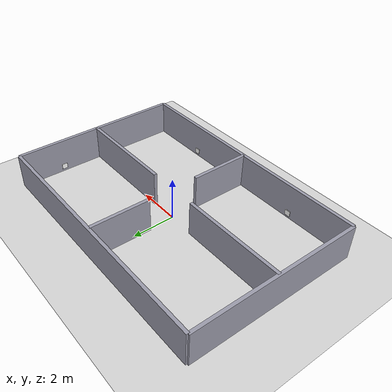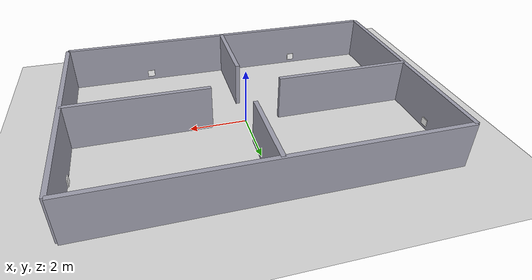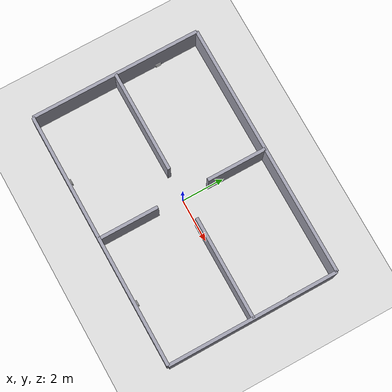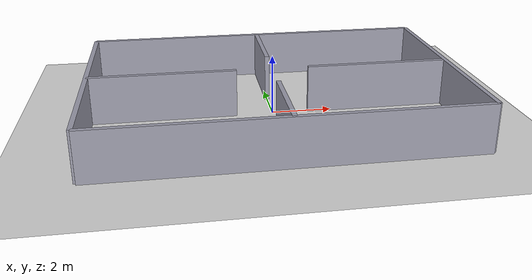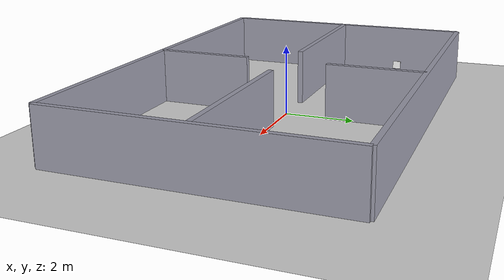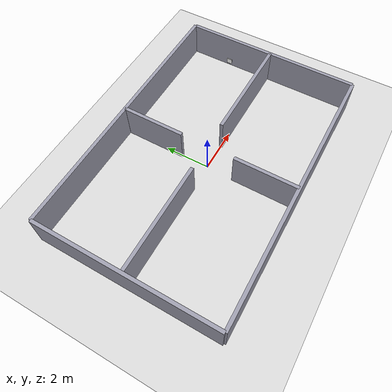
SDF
<?xml version="1.0" ?>
<!-- SMALL sectioned maze for FAST exploration/inspection testing (auto-generated by gen_maze_world.py):
     12x8 m, 4 rooms (NW/NE/SW/SE) around a central HUB. Robot spawns at (0,0) facing +X. -->
<sdf version="1.10">
  <world name="maze">
    <physics name="1ms" type="ignored"><max_step_size>0.002</max_step_size><real_time_factor>1.0</real_time_factor></physics>
    <plugin filename="gz-sim-physics-system"           name="gz::sim::systems::Physics"/>
    <plugin filename="gz-sim-sensors-system"           name="gz::sim::systems::Sensors"><render_engine>ogre2</render_engine></plugin>
    <plugin filename="gz-sim-scene-broadcaster-system" name="gz::sim::systems::SceneBroadcaster"/>
    <plugin filename="gz-sim-user-commands-system"     name="gz::sim::systems::UserCommands"/>
    <plugin filename="gz-sim-contact-system"           name="gz::sim::systems::Contact"/>
    <plugin filename="gz-sim-imu-system"               name="gz::sim::systems::Imu"/>

    <scene><ambient>0.45 0.45 0.45 1</ambient><background>0.7 0.7 0.8 1</background><grid>false</grid></scene>
    <light type="directional" name="sun"><cast_shadows>true</cast_shadows><pose>0 0 12 0 0 0</pose>
      <diffuse>0.9 0.9 0.9 1</diffuse><specular>0.2 0.2 0.2 1</specular><direction>-0.4 0.3 -0.9</direction></light>

    <model name="ground_plane"><static>true</static><link name="link">
      <collision name="c"><geometry><plane><normal>0 0 1</normal><size>60 60</size></plane></geometry></collision>
      <visual name="v"><geometry><plane><normal>0 0 1</normal><size>60 60</size></plane></geometry>
        <material><ambient>0.8 0.8 0.8 1</ambient><diffuse>0.85 0.85 0.85 1</diffuse></material></visual>
    </link></model>

    <model name="maze"><static>true</static><link name="structure">
        <collision name="n_c"><pose>0.0 4.0 0.8 0 0 0</pose><geometry><box><size>12.0 0.15 1.6</size></box></geometry></collision>
        <visual name="n_v"><pose>0.0 4.0 0.8 0 0 0</pose><geometry><box><size>12.0 0.15 1.6</size></box></geometry><material><ambient>0.62 0.62 0.68 1</ambient><diffuse>0.62 0.62 0.68 1</diffuse></material></visual>
        <collision name="s_c"><pose>0.0 -4.0 0.8 0 0 0</pose><geometry><box><size>12.0 0.15 1.6</size></box></geometry></collision>
        <visual name="s_v"><pose>0.0 -4.0 0.8 0 0 0</pose><geometry><box><size>12.0 0.15 1.6</size></box></geometry><material><ambient>0.62 0.62 0.68 1</ambient><diffuse>0.62 0.62 0.68 1</diffuse></material></visual>
        <collision name="e_c"><pose>6.0 0.0 0.8 0 0 0</pose><geometry><box><size>0.15 8.0 1.6</size></box></geometry></collision>
        <visual name="e_v"><pose>6.0 0.0 0.8 0 0 0</pose><geometry><box><size>0.15 8.0 1.6</size></box></geometry><material><ambient>0.62 0.62 0.68 1</ambient><diffuse>0.62 0.62 0.68 1</diffuse></material></visual>
        <collision name="w_c"><pose>-6.0 0.0 0.8 0 0 0</pose><geometry><box><size>0.15 8.0 1.6</size></box></geometry></collision>
        <visual name="w_v"><pose>-6.0 0.0 0.8 0 0 0</pose><geometry><box><size>0.15 8.0 1.6</size></box></geometry><material><ambient>0.62 0.62 0.68 1</ambient><diffuse>0.62 0.62 0.68 1</diffuse></material></visual>
        <collision name="vt_c"><pose>0.0 2.6 0.8 0 0 0</pose><geometry><box><size>0.15 2.8 1.6</size></box></geometry></collision>
        <visual name="vt_v"><pose>0.0 2.6 0.8 0 0 0</pose><geometry><box><size>0.15 2.8 1.6</size></box></geometry><material><ambient>0.62 0.62 0.68 1</ambient><diffuse>0.62 0.62 0.68 1</diffuse></material></visual>
        <collision name="vb_c"><pose>0.0 -2.6 0.8 0 0 0</pose><geometry><box><size>0.15 2.8 1.6</size></box></geometry></collision>
        <visual name="vb_v"><pose>0.0 -2.6 0.8 0 0 0</pose><geometry><box><size>0.15 2.8 1.6</size></box></geometry><material><ambient>0.62 0.62 0.68 1</ambient><diffuse>0.62 0.62 0.68 1</diffuse></material></visual>
        <collision name="hl_c"><pose>-3.6 0.0 0.8 0 0 0</pose><geometry><box><size>4.8 0.15 1.6</size></box></geometry></collision>
        <visual name="hl_v"><pose>-3.6 0.0 0.8 0 0 0</pose><geometry><box><size>4.8 0.15 1.6</size></box></geometry><material><ambient>0.62 0.62 0.68 1</ambient><diffuse>0.62 0.62 0.68 1</diffuse></material></visual>
        <collision name="hr_c"><pose>3.6 0.0 0.8 0 0 0</pose><geometry><box><size>4.8 0.15 1.6</size></box></geometry></collision>
        <visual name="hr_v"><pose>3.6 0.0 0.8 0 0 0</pose><geometry><box><size>4.8 0.15 1.6</size></box></geometry><material><ambient>0.62 0.62 0.68 1</ambient><diffuse>0.62 0.62 0.68 1</diffuse></material></visual>
    </link></model>

    <model name="gauge_00"><static>true</static>
      <pose>-5.85 2.0 0.30 0 0 1.5708</pose>
      <link name="link"><visual name="face">
        <geometry><box><size>0.26 0.03 0.26</size></box></geometry>
        <material><ambient>1 1 1 1</ambient><diffuse>1 1 1 1</diffuse><specular>0 0 0 1</specular>
          <pbr><metal>
            <albedo_map>maze_tex/gauge_00.png</albedo_map>
            <emissive_map>maze_tex/gauge_00.png</emissive_map>
            <metalness>0.0</metalness><roughness>1.0</roughness>
          </metal></pbr>
        </material>
      </visual></link>
    </model>
    <model name="gauge_01"><static>true</static>
      <pose>5.85 2.0 0.30 0 0 1.5708</pose>
      <link name="link"><visual name="face">
        <geometry><box><size>0.26 0.03 0.26</size></box></geometry>
        <material><ambient>1 1 1 1</ambient><diffuse>1 1 1 1</diffuse><specular>0 0 0 1</specular>
          <pbr><metal>
            <albedo_map>maze_tex/gauge_01.png</albedo_map>
            <emissive_map>maze_tex/gauge_01.png</emissive_map>
            <metalness>0.0</metalness><roughness>1.0</roughness>
          </metal></pbr>
        </material>
      </visual></link>
    </model>
    <model name="gauge_02"><static>true</static>
      <pose>-3.0 -3.85 0.30 0 0 0.0</pose>
      <link name="link"><visual name="face">
        <geometry><box><size>0.26 0.03 0.26</size></box></geometry>
        <material><ambient>1 1 1 1</ambient><diffuse>1 1 1 1</diffuse><specular>0 0 0 1</specular>
          <pbr><metal>
            <albedo_map>maze_tex/gauge_02.png</albedo_map>
            <emissive_map>maze_tex/gauge_02.png</emissive_map>
            <metalness>0.0</metalness><roughness>1.0</roughness>
          </metal></pbr>
        </material>
      </visual></link>
    </model>
    <model name="gauge_03"><static>true</static>
      <pose>3.0 -3.85 0.30 0 0 0.0</pose>
      <link name="link"><visual name="face">
        <geometry><box><size>0.26 0.03 0.26</size></box></geometry>
        <material><ambient>1 1 1 1</ambient><diffuse>1 1 1 1</diffuse><specular>0 0 0 1</specular>
          <pbr><metal>
            <albedo_map>maze_tex/gauge_03.png</albedo_map>
            <emissive_map>maze_tex/gauge_03.png</emissive_map>
            <metalness>0.0</metalness><roughness>1.0</roughness>
          </metal></pbr>
        </material>
      </visual></link>
    </model>

  </world>
</sdf>
